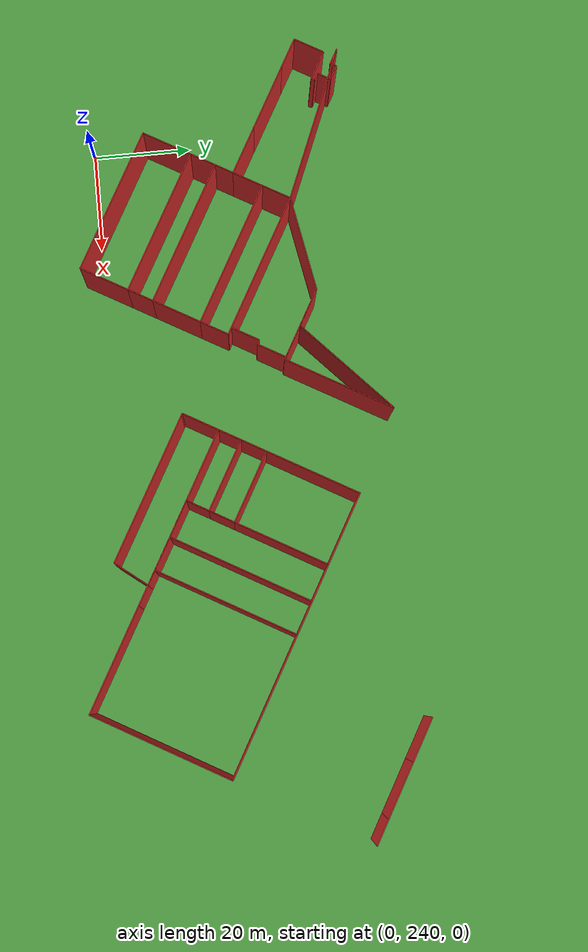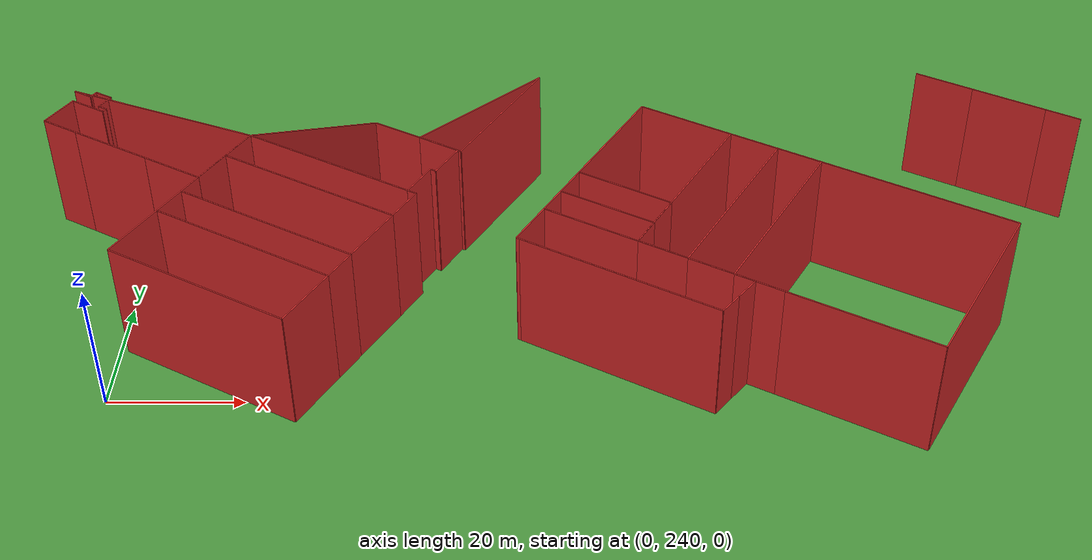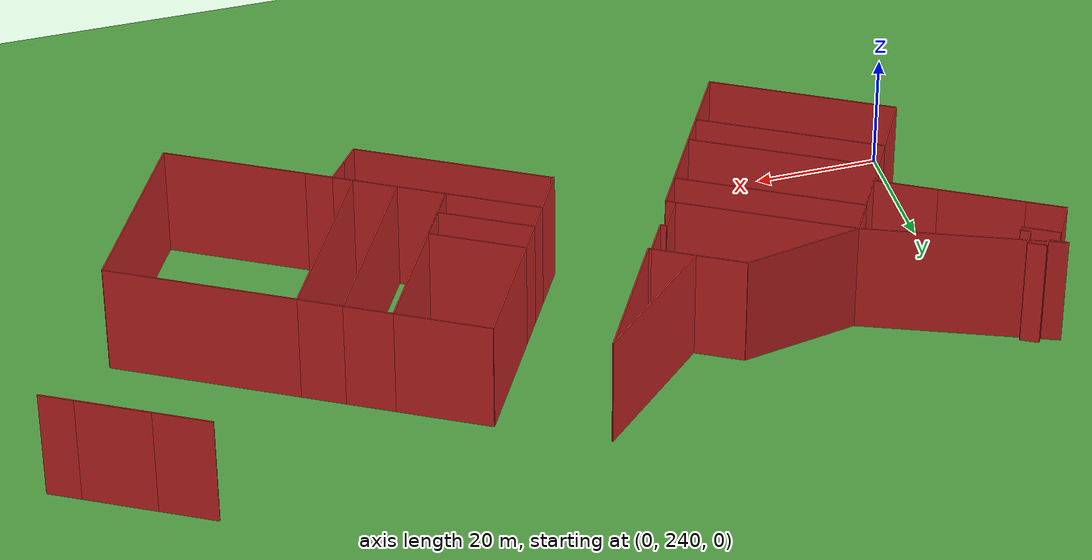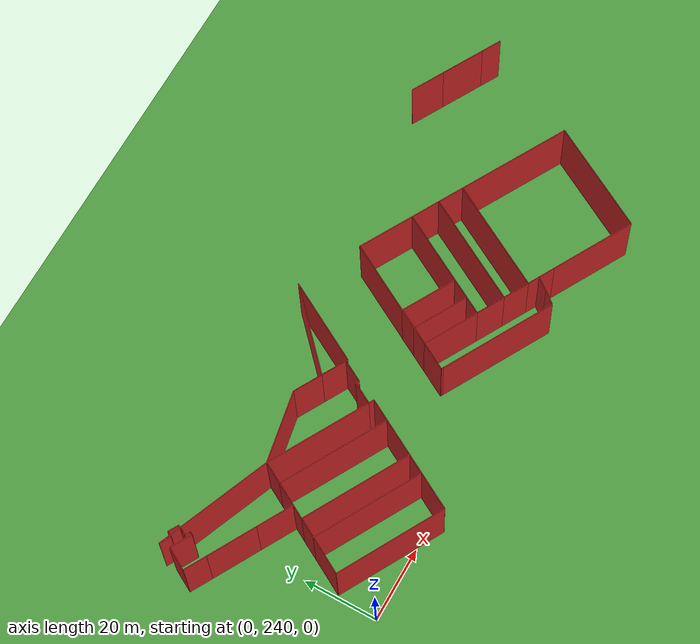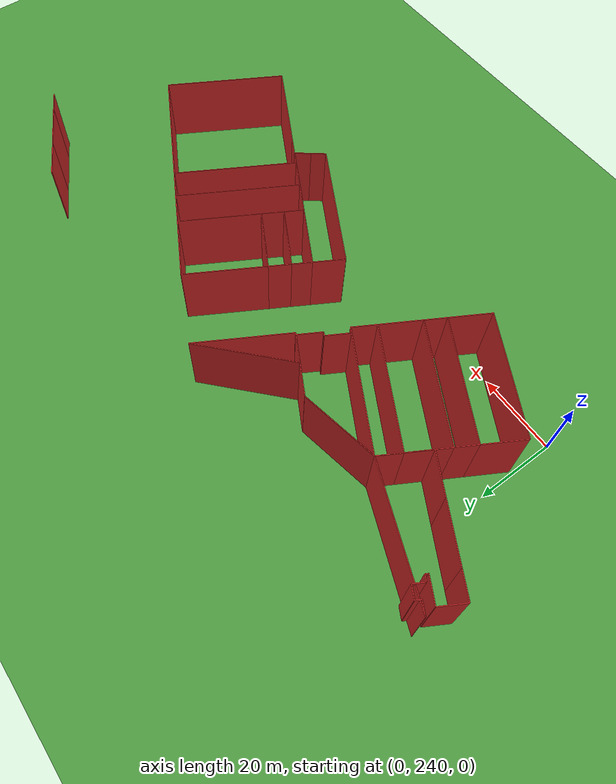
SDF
<sdf version="1.4">
 <world name="default">
  <model name="ground">
   <static>true</static>
   <link name="link">
    <collision name="collision">
     <geometry><plane><size>10000 10000</size><normal>0 0 1</normal></plane></geometry>
     <surface><friction><ode><mu>100</mu><mu2>50</mu2></ode></friction></surface>
    </collision>
    <visual name="visual">
     <pose>0 0 -1 0 0 0</pose>
     <geometry><plane><normal>0 0 1</normal><size>10000 10000</size></plane></geometry>
     <material>
      <script><uri>file://media/materials/scripts/gazebo.material</uri><name>Gazebo/Grass</name></script>
     </material>
    </visual>
   </link>
  </model>
  <include><uri>model://sun</uri></include>
  <model name="office_building_266151939">
   <static>true</static>
   <pose>126.084285854 295.774875327 0.0 0 0 0</pose>
   <link name="office_building_266151939_0">
    <collision name="office_building_266151939_0">
     <geometry><box><size>9.4626025902 0.2 20.0</size></box></geometry>
    </collision>
    <visual name="office_building_266151939_0">
     <geometry><box><size>9.4626025902 0.2 20.0</size></box></geometry>
     <material>
      <script><uri>file://media/materials/scripts/gazebo.material</uri><name>Gazebo/Red</name></script>
     </material>
    </visual>
    <pose>0.0 0.0 9.0 0 0 -0.504473158442</pose>
   </link>
  </model>
  <model name="office_building_266151931">
   <static>true</static>
   <pose>133.713943842 291.561953469 0.0 0 0 0</pose>
   <link name="office_building_266151931_0">
    <collision name="office_building_266151931_0">
     <geometry><box><size>11.9526738172 0.2 20.0</size></box></geometry>
    </collision>
    <visual name="office_building_266151931_0">
     <geometry><box><size>11.9526738172 0.2 20.0</size></box></geometry>
     <material>
      <script><uri>file://media/materials/scripts/gazebo.material</uri><name>Gazebo/Red</name></script>
     </material>
    </visual>
    <pose>1.74386923866 -0.963032453081 9.0 0 0 2.63703213266</pose>
   </link>
   <link name="office_building_266151931_1">
    <collision name="office_building_266151931_1">
     <geometry><box><size>11.9526738172 0.2 20.0</size></box></geometry>
    </collision>
    <visual name="office_building_266151931_1">
     <geometry><box><size>11.9526738172 0.2 20.0</size></box></geometry>
     <material>
      <script><uri>file://media/materials/scripts/gazebo.material</uri><name>Gazebo/Red</name></script>
     </material>
    </visual>
    <pose>1.74386923866 -0.963032453081 9.0 0 0 -0.504560520929</pose>
   </link>
  </model>
  <model name="office_building_266151932">
   <static>true</static>
   <pose>143.141216556 286.357930909 0.0 0 0 0</pose>
   <link name="office_building_266151932_0">
    <collision name="office_building_266151932_0">
     <geometry><box><size>5.59961300474 0.2 20.0</size></box></geometry>
    </collision>
    <visual name="office_building_266151932_0">
     <geometry><box><size>5.59961300474 0.2 20.0</size></box></geometry>
     <material>
      <script><uri>file://media/materials/scripts/gazebo.material</uri><name>Gazebo/Red</name></script>
     </material>
    </visual>
    <pose>0.0 0.0 9.0 0 0 -0.503908850876</pose>
   </link>
  </model>
  <model name="1600 Broadway"><static>true</static><pose>121.942366344 298.061732278 0.0 0 0 0</pose></model>
  <model name="office_building_266170807">
   <static>true</static>
   <pose>13.6077820185 248.895185256 0.0 0 0 0</pose>
   <link name="office_building_266170807_0">
    <collision name="office_building_266170807_0">
     <geometry><box><size>10.5221205274 0.2 20.0</size></box></geometry>
    </collision>
    <visual name="office_building_266170807_0">
     <geometry><box><size>10.5221205274 0.2 20.0</size></box></geometry>
     <material>
      <script><uri>file://media/materials/scripts/gazebo.material</uri><name>Gazebo/Red</name></script>
     </material>
    </visual>
    <pose>-10.1285164397 6.80155858499 9.0 0 0 -2.0796798618</pose>
   </link>
   <link name="office_building_266170807_1">
    <collision name="office_building_266170807_1">
     <geometry><box><size>30.3925068217 0.2 20.0</size></box></geometry>
    </collision>
    <visual name="office_building_266170807_1">
     <geometry><box><size>30.3925068217 0.2 20.0</size></box></geometry>
     <material>
      <script><uri>file://media/materials/scripts/gazebo.material</uri><name>Gazebo/Red</name></script>
     </material>
    </visual>
    <pose>5.73334716327 4.04263727323 9.0 0 0 2.63649588823</pose>
   </link>
   <link name="office_building_266170807_2">
    <collision name="office_building_266170807_2">
     <geometry><box><size>10.5166790038 0.2 20.0</size></box></geometry>
    </collision>
    <visual name="office_building_266170807_2">
     <geometry><box><size>10.5166790038 0.2 20.0</size></box></geometry>
     <material>
      <script><uri>file://media/materials/scripts/gazebo.material</uri><name>Gazebo/Red</name></script>
     </material>
    </visual>
    <pose>16.4743756585 -7.90512485863 9.0 0 0 1.06283661305</pose>
   </link>
   <link name="office_building_266170807_3">
    <collision name="office_building_266170807_3">
     <geometry><box><size>30.4022433863 0.2 20.0</size></box></geometry>
    </collision>
    <visual name="office_building_266170807_3">
     <geometry><box><size>30.4022433863 0.2 20.0</size></box></geometry>
     <material>
      <script><uri>file://media/materials/scripts/gazebo.material</uri><name>Gazebo/Red</name></script>
     </material>
    </visual>
    <pose>0.612512055553 -5.14620354688 9.0 0 0 -0.504918844877</pose>
   </link>
  </model>
  <model name="office_building_266170806">
   <static>true</static>
   <pose>76.6917932526 274.438464644 0.0 0 0 0</pose>
   <link name="office_building_266170806_0">
    <collision name="office_building_266170806_0">
     <geometry><box><size>20.2768953242 0.2 20.0</size></box></geometry>
    </collision>
    <visual name="office_building_266170806_0">
     <geometry><box><size>20.2768953242 0.2 20.0</size></box></geometry>
     <material>
      <script><uri>file://media/materials/scripts/gazebo.material</uri><name>Gazebo/Red</name></script>
     </material>
    </visual>
    <pose>-4.40425280131 4.7588715328 9.0 0 0 -2.08007196948</pose>
   </link>
   <link name="office_building_266170806_1">
    <collision name="office_building_266170806_1">
     <geometry><box><size>15.4089847912 0.2 20.0</size></box></geometry>
    </collision>
    <visual name="office_building_266170806_1">
     <geometry><box><size>15.4089847912 0.2 20.0</size></box></geometry>
     <material>
      <script><uri>file://media/materials/scripts/gazebo.material</uri><name>Gazebo/Red</name></script>
     </material>
    </visual>
    <pose>7.27696492504 9.8750982638 9.0 0 0 2.63538505878</pose>
   </link>
   <link name="office_building_266170806_2">
    <collision name="office_building_266170806_2">
     <geometry><box><size>20.2714485598 0.2 20.0</size></box></geometry>
    </collision>
    <visual name="office_building_266170806_2">
     <geometry><box><size>20.2714485598 0.2 20.0</size></box></geometry>
     <material>
      <script><uri>file://media/materials/scripts/gazebo.material</uri><name>Gazebo/Red</name></script>
     </material>
    </visual>
    <pose>9.07785363053 -2.71237865107 9.0 0 0 1.06199984845</pose>
   </link>
   <link name="office_building_266170806_3">
    <collision name="office_building_266170806_3">
     <geometry><box><size>15.4187157709 0.2 20.0</size></box></geometry>
    </collision>
    <visual name="office_building_266170806_3">
     <geometry><box><size>15.4187157709 0.2 20.0</size></box></geometry>
     <material>
      <script><uri>file://media/materials/scripts/gazebo.material</uri><name>Gazebo/Red</name></script>
     </material>
    </visual>
    <pose>-2.60336409582 -7.82860538207 9.0 0 0 -0.505856121631</pose>
   </link>
  </model>
  <model name="office_building_266170625">
   <static>true</static>
   <pose>71.1294554776 264.471492953 0.0 0 0 0</pose>
   <link name="office_building_266170625_0">
    <collision name="office_building_266170625_0">
     <geometry><box><size>5.50546986581 0.2 20.0</size></box></geometry>
    </collision>
    <visual name="office_building_266170625_0">
     <geometry><box><size>5.50546986581 0.2 20.0</size></box></geometry>
     <material>
      <script><uri>file://media/materials/scripts/gazebo.material</uri><name>Gazebo/Red</name></script>
     </material>
    </visual>
    <pose>-5.12484991719 3.46940965767 9.0 0 0 -2.07920010545</pose>
   </link>
   <link name="office_building_266170625_1">
    <collision name="office_building_266170625_1">
     <geometry><box><size>15.4187157709 0.2 20.0</size></box></geometry>
    </collision>
    <visual name="office_building_266170625_1">
     <geometry><box><size>15.4187157709 0.2 20.0</size></box></geometry>
     <material>
      <script><uri>file://media/materials/scripts/gazebo.material</uri><name>Gazebo/Red</name></script>
     </material>
    </visual>
    <pose>2.95897367912 2.1383663095 9.0 0 0 2.63573653196</pose>
   </link>
   <link name="office_building_266170625_2">
    <collision name="office_building_266170625_2">
     <geometry><box><size>5.51088320307 0.2 20.0</size></box></geometry>
    </collision>
    <visual name="office_building_266170625_2">
     <geometry><box><size>5.51088320307 0.2 20.0</size></box></geometry>
     <material>
      <script><uri>file://media/materials/scripts/gazebo.material</uri><name>Gazebo/Red</name></script>
     </material>
    </visual>
    <pose>8.35726789263 -4.00182635128 9.0 0 0 1.06063021183</pose>
   </link>
   <link name="office_building_266170625_3">
    <collision name="office_building_266170625_3">
     <geometry><box><size>15.4089909476 0.2 20.0</size></box></geometry>
    </collision>
    <visual name="office_building_266170625_3">
     <geometry><box><size>15.4089909476 0.2 20.0</size></box></geometry>
     <material>
      <script><uri>file://media/materials/scripts/gazebo.material</uri><name>Gazebo/Red</name></script>
     </material>
    </visual>
    <pose>0.27344429632 -2.67078300311 9.0 0 0 -0.506205269672</pose>
   </link>
  </model>
  <model name="office_building_266170623">
   <static>true</static>
   <pose>28.3448003992 269.604328676 0.0 0 0 0</pose>
   <link name="office_building_266170623_0">
    <collision name="office_building_266170623_0">
     <geometry><box><size>6.12986993028 0.2 20.0</size></box></geometry>
    </collision>
    <visual name="office_building_266170623_0">
     <geometry><box><size>6.12986993028 0.2 20.0</size></box></geometry>
     <material>
      <script><uri>file://media/materials/scripts/gazebo.material</uri><name>Gazebo/Red</name></script>
     </material>
    </visual>
    <pose>-13.0836715745 7.23684968705 9.0 0 0 -2.07851016107</pose>
   </link>
   <link name="office_building_266170623_1">
    <collision name="office_building_266170623_1">
     <geometry><box><size>28.9213535343 0.2 20.0</size></box></geometry>
    </collision>
    <visual name="office_building_266170623_1">
     <geometry><box><size>28.9213535343 0.2 20.0</size></box></geometry>
     <material>
      <script><uri>file://media/materials/scripts/gazebo.material</uri><name>Gazebo/Red</name></script>
     </material>
    </visual>
    <pose>1.06016535002 2.91556660265 9.0 0 0 2.63632248697</pose>
   </link>
   <link name="office_building_266170623_2">
    <collision name="office_building_266170623_2">
     <geometry><box><size>1.47522072682 0.2 20.0</size></box></geometry>
    </collision>
    <visual name="office_building_266170623_2">
     <geometry><box><size>1.47522072682 0.2 20.0</size></box></geometry>
     <material>
      <script><uri>file://media/materials/scripts/gazebo.material</uri><name>Gazebo/Red</name></script>
     </material>
    </visual>
    <pose>14.3588076758 -4.44201595656 9.0 0 0 2.63485792414</pose>
   </link>
   <link name="office_building_266170623_3">
    <collision name="office_building_266170623_3">
     <geometry><box><size>6.12249420829 0.2 20.0</size></box></geometry>
    </collision>
    <visual name="office_building_266170623_3">
     <geometry><box><size>6.12249420829 0.2 20.0</size></box></geometry>
     <material>
      <script><uri>file://media/materials/scripts/gazebo.material</uri><name>Gazebo/Red</name></script>
     </material>
    </visual>
    <pose>13.5136185564 -7.47409749262 9.0 0 0 1.06241417256</pose>
   </link>
   <link name="office_building_266170623_4">
    <collision name="office_building_266170623_4">
     <geometry><box><size>30.392499383 0.2 20.0</size></box></geometry>
    </collision>
    <visual name="office_building_266170623_4">
     <geometry><box><size>30.392499383 0.2 20.0</size></box></geometry>
     <material>
      <script><uri>file://media/materials/scripts/gazebo.material</uri><name>Gazebo/Red</name></script>
     </material>
    </visual>
    <pose>-1.2751361013 -2.79483373049 9.0 0 0 -0.505098199401</pose>
   </link>
  </model>
  <model name="office_building_266170622">
   <static>true</static>
   <pose>68.6162904021 259.970598528 0.0 0 0 0</pose>
   <link name="office_building_266170622_0">
    <collision name="office_building_266170622_0">
     <geometry><box><size>4.92136446712 0.2 20.0</size></box></geometry>
    </collision>
    <visual name="office_building_266170622_0">
     <geometry><box><size>4.92136446712 0.2 20.0</size></box></geometry>
     <material>
      <script><uri>file://media/materials/scripts/gazebo.material</uri><name>Gazebo/Red</name></script>
     </material>
    </visual>
    <pose>-5.15265261642 3.41803139171 9.0 0 0 -2.08067184619</pose>
   </link>
   <link name="office_building_266170622_1">
    <collision name="office_building_266170622_1">
     <geometry><box><size>15.4089909476 0.2 20.0</size></box></geometry>
    </collision>
    <visual name="office_building_266170622_1">
     <geometry><box><size>15.4089909476 0.2 20.0</size></box></geometry>
     <material>
      <script><uri>file://media/materials/scripts/gazebo.material</uri><name>Gazebo/Red</name></script>
     </material>
    </visual>
    <pose>2.78660937179 1.83011142134 9.0 0 0 2.63538738392</pose>
   </link>
   <link name="office_building_266170622_2">
    <collision name="office_building_266170622_2">
     <geometry><box><size>4.91594047166 0.2 20.0</size></box></geometry>
    </collision>
    <visual name="office_building_266170622_2">
     <geometry><box><size>4.91594047166 0.2 20.0</size></box></geometry>
     <material>
      <script><uri>file://media/materials/scripts/gazebo.material</uri><name>Gazebo/Red</name></script>
     </material>
    </visual>
    <pose>8.32946979512 -4.05319887758 9.0 0 0 1.06289530161</pose>
   </link>
   <link name="office_building_266170622_3">
    <collision name="office_building_266170622_3">
     <geometry><box><size>15.4187182593 0.2 20.0</size></box></geometry>
    </collision>
    <visual name="office_building_266170622_3">
     <geometry><box><size>15.4187182593 0.2 20.0</size></box></geometry>
     <material>
      <script><uri>file://media/materials/scripts/gazebo.material</uri><name>Gazebo/Red</name></script>
     </material>
    </visual>
    <pose>0.390207806921 -2.46527890721 9.0 0 0 -0.505855181135</pose>
   </link>
  </model>
  <model name="office_building_266170811">
   <static>true</static>
   <pose>48.9667041041 281.226361094 0.0 0 0 0</pose>
   <link name="office_building_266170811_0">
    <collision name="office_building_266170811_0">
     <geometry><box><size>24.9051964942 0.2 20.0</size></box></geometry>
    </collision>
    <visual name="office_building_266170811_0">
     <geometry><box><size>24.9051964942 0.2 20.0</size></box></geometry>
     <material>
      <script><uri>file://media/materials/scripts/gazebo.material</uri><name>Gazebo/Red</name></script>
     </material>
    </visual>
    <pose>2.9057758436 6.5332331912 9.0 0 0 -2.38262246103</pose>
   </link>
   <link name="office_building_266170811_1">
    <collision name="office_building_266170811_1">
     <geometry><box><size>23.7448132106 0.2 20.0</size></box></geometry>
    </collision>
    <visual name="office_building_266170811_1">
     <geometry><box><size>23.7448132106 0.2 20.0</size></box></geometry>
     <material>
      <script><uri>file://media/materials/scripts/gazebo.material</uri><name>Gazebo/Red</name></script>
     </material>
    </visual>
    <pose>6.16371955126 4.73069024999 9.0 0 0 1.06261568981</pose>
   </link>
   <link name="office_building_266170811_2">
    <collision name="office_building_266170811_2">
     <geometry><box><size>0.52123803109 0.2 20.0</size></box></geometry>
    </collision>
    <visual name="office_building_266170811_2">
     <geometry><box><size>0.52123803109 0.2 20.0</size></box></geometry>
     <material>
      <script><uri>file://media/materials/scripts/gazebo.material</uri><name>Gazebo/Red</name></script>
     </material>
    </visual>
    <pose>0.15879694709 -5.51506863872 9.0 0 0 -0.506126806177</pose>
   </link>
   <link name="office_building_266170811_3">
    <collision name="office_building_266170811_3">
     <geometry><box><size>6.92546832234 0.2 20.0</size></box></geometry>
    </collision>
    <visual name="office_building_266170811_3">
     <geometry><box><size>6.92546832234 0.2 20.0</size></box></geometry>
     <material>
      <script><uri>file://media/materials/scripts/gazebo.material</uri><name>Gazebo/Red</name></script>
     </material>
    </visual>
    <pose>-3.09914676057 -3.71252569751 9.0 0 0 -0.505297019118</pose>
   </link>
  </model>
  <model name="office_building_266170821">
   <static>true</static>
   <pose>102.222527915 249.135234966 0.0 0 0 0</pose>
   <link name="office_building_266170821_0">
    <collision name="office_building_266170821_0">
     <geometry><box><size>30.7036423945 0.2 20.0</size></box></geometry>
    </collision>
    <visual name="office_building_266170821_0">
     <geometry><box><size>30.7036423945 0.2 20.0</size></box></geometry>
     <material>
      <script><uri>file://media/materials/scripts/gazebo.material</uri><name>Gazebo/Red</name></script>
     </material>
    </visual>
    <pose>-5.84530359111 10.7610953779 9.0 0 0 -2.0800113259</pose>
   </link>
   <link name="office_building_266170821_1">
    <collision name="office_building_266170821_1">
     <geometry><box><size>30.8000462031 0.2 20.0</size></box></geometry>
    </collision>
    <visual name="office_building_266170821_1">
     <geometry><box><size>30.8000462031 0.2 20.0</size></box></geometry>
     <material>
      <script><uri>file://media/materials/scripts/gazebo.material</uri><name>Gazebo/Red</name></script>
     </material>
    </visual>
    <pose>15.1095832636 16.7024209197 9.0 0 0 2.63569277198</pose>
   </link>
   <link name="office_building_266170821_2">
    <collision name="office_building_266170821_2">
     <geometry><box><size>30.7035570677 0.2 20.0</size></box></geometry>
    </collision>
    <visual name="office_building_266170821_2">
     <geometry><box><size>30.7035570677 0.2 20.0</size></box></geometry>
     <material>
      <script><uri>file://media/materials/scripts/gazebo.material</uri><name>Gazebo/Red</name></script>
     </material>
    </visual>
    <pose>21.0967174137 -4.1644130318 9.0 0 0 1.06158179539</pose>
   </link>
   <link name="office_building_266170821_3">
    <collision name="office_building_266170821_3">
     <geometry><box><size>23.1584896 0.2 20.0</size></box></geometry>
    </collision>
    <visual name="office_building_266170821_3">
     <geometry><box><size>23.1584896 0.2 20.0</size></box></geometry>
     <material>
      <script><uri>file://media/materials/scripts/gazebo.material</uri><name>Gazebo/Red</name></script>
     </material>
    </visual>
    <pose>3.48317677524 -11.9587934339 9.0 0 0 -0.505745939004</pose>
   </link>
   <link name="office_building_266170821_4">
    <collision name="office_building_266170821_4">
     <geometry><box><size>4.43538063624 0.2 20.0</size></box></geometry>
    </collision>
    <visual name="office_building_266170821_4">
     <geometry><box><size>4.43538063624 0.2 20.0</size></box></geometry>
     <material>
      <script><uri>file://media/materials/scripts/gazebo.material</uri><name>Gazebo/Red</name></script>
     </material>
    </visual>
    <pose>-8.58681708411 -5.27518172416 9.0 0 0 -0.505512299688</pose>
   </link>
   <link name="office_building_266170821_5">
    <collision name="office_building_266170821_5">
     <geometry><box><size>3.2061954322 0.2 20.0</size></box></geometry>
    </collision>
    <visual name="office_building_266170821_5">
     <geometry><box><size>3.2061954322 0.2 20.0</size></box></geometry>
     <material>
      <script><uri>file://media/materials/scripts/gazebo.material</uri><name>Gazebo/Red</name></script>
     </material>
    </visual>
    <pose>-11.9281633004 -3.42212686385 9.0 0 0 -0.507521390662</pose>
   </link>
  </model>
  <model name="office_building_266170742">
   <static>true</static>
   <pose>91.1310256836 259.292623958 0.0 0 0 0</pose>
   <link name="office_building_266170742_0">
    <collision name="office_building_266170742_0">
     <geometry><box><size>30.7036621856 0.2 20.0</size></box></geometry>
    </collision>
    <visual name="office_building_266170742_0">
     <geometry><box><size>30.7036621856 0.2 20.0</size></box></geometry>
     <material>
      <script><uri>file://media/materials/scripts/gazebo.material</uri><name>Gazebo/Red</name></script>
     </material>
    </visual>
    <pose>-1.00283370573 4.06556389288 9.0 0 0 -2.08001143436</pose>
   </link>
   <link name="office_building_266170742_1">
    <collision name="office_building_266170742_1">
     <geometry><box><size>7.14386718833 0.2 20.0</size></box></geometry>
    </collision>
    <visual name="office_building_266170742_1">
     <geometry><box><size>7.14386718833 0.2 20.0</size></box></geometry>
     <material>
      <script><uri>file://media/materials/scripts/gazebo.material</uri><name>Gazebo/Red</name></script>
     </material>
    </visual>
    <pose>9.60557549206 15.7387356754 9.0 0 0 2.63569525873</pose>
   </link>
   <link name="office_building_266170742_2">
    <collision name="office_building_266170742_2">
     <geometry><box><size>30.7036423945 0.2 20.0</size></box></geometry>
    </collision>
    <visual name="office_building_266170742_2">
     <geometry><box><size>30.7036423945 0.2 20.0</size></box></geometry>
     <material>
      <script><uri>file://media/materials/scripts/gazebo.material</uri><name>Gazebo/Red</name></script>
     </material>
    </visual>
    <pose>5.24619864039 0.603706385817 9.0 0 0 1.06158132769</pose>
   </link>
   <link name="office_building_266170742_3">
    <collision name="office_building_266170742_3">
     <geometry><box><size>7.14387058394 0.2 20.0</size></box></geometry>
    </collision>
    <visual name="office_building_266170742_3">
     <geometry><box><size>7.14387058394 0.2 20.0</size></box></geometry>
     <material>
      <script><uri>file://media/materials/scripts/gazebo.material</uri><name>Gazebo/Red</name></script>
     </material>
    </visual>
    <pose>-5.3622105574 -11.0694653967 9.0 0 0 -0.505894626068</pose>
   </link>
  </model>
  <model name="office_building_266170740">
   <static>true</static>
   <pose>38.1081669585 281.801197507 0.0 0 0 0</pose>
   <link name="office_building_266170740_0">
    <collision name="office_building_266170740_0">
     <geometry><box><size>8.10351728179 0.2 20.0</size></box></geometry>
    </collision>
    <visual name="office_building_266170740_0">
     <geometry><box><size>8.10351728179 0.2 20.0</size></box></geometry>
     <material>
      <script><uri>file://media/materials/scripts/gazebo.material</uri><name>Gazebo/Red</name></script>
     </material>
    </visual>
    <pose>1.18234789105 -0.652791379371 9.0 0 0 2.63712749869</pose>
   </link>
   <link name="office_building_266170740_1">
    <collision name="office_building_266170740_1">
     <geometry><box><size>8.10351728179 0.2 20.0</size></box></geometry>
    </collision>
    <visual name="office_building_266170740_1">
     <geometry><box><size>8.10351728179 0.2 20.0</size></box></geometry>
     <material>
      <script><uri>file://media/materials/scripts/gazebo.material</uri><name>Gazebo/Red</name></script>
     </material>
    </visual>
    <pose>1.18234789105 -0.652791379371 9.0 0 0 -0.504465154895</pose>
   </link>
  </model>
  <model name="office_building_266170741">
   <static>true</static>
   <pose>83.0625054986 262.253293247 0.0 0 0 0</pose>
   <link name="office_building_266170741_0">
    <collision name="office_building_266170741_0">
     <geometry><box><size>4.91594047166 0.2 20.0</size></box></geometry>
    </collision>
    <visual name="office_building_266170741_0">
     <geometry><box><size>4.91594047166 0.2 20.0</size></box></geometry>
     <material>
      <script><uri>file://media/materials/scripts/gazebo.material</uri><name>Gazebo/Red</name></script>
     </material>
    </visual>
    <pose>-6.11674530129 -6.33589359677 9.0 0 0 -2.07869735198</pose>
   </link>
   <link name="office_building_266170741_1">
    <collision name="office_building_266170741_1">
     <geometry><box><size>5.51088320307 0.2 20.0</size></box></geometry>
    </collision>
    <visual name="office_building_266170741_1">
     <geometry><box><size>5.51088320307 0.2 20.0</size></box></geometry>
     <material>
      <script><uri>file://media/materials/scripts/gazebo.material</uri><name>Gazebo/Red</name></script>
     </material>
    </visual>
    <pose>-3.57578212831 -1.78362664603 9.0 0 0 -2.08096244176</pose>
   </link>
   <link name="office_building_266170741_2">
    <collision name="office_building_266170741_2">
     <geometry><box><size>20.2714485598 0.2 20.0</size></box></geometry>
    </collision>
    <visual name="office_building_266170741_2">
     <geometry><box><size>20.2714485598 0.2 20.0</size></box></geometry>
     <material>
      <script><uri>file://media/materials/scripts/gazebo.material</uri><name>Gazebo/Red</name></script>
     </material>
    </visual>
    <pose>2.70714138452 9.47279274575 9.0 0 0 -2.07959280514</pose>
   </link>
   <link name="office_building_266170741_3">
    <collision name="office_building_266170741_3">
     <geometry><box><size>7.88916837486 0.2 20.0</size></box></geometry>
    </collision>
    <visual name="office_building_266170741_3">
     <geometry><box><size>7.88916837486 0.2 20.0</size></box></geometry>
     <material>
      <script><uri>file://media/materials/scripts/gazebo.material</uri><name>Gazebo/Red</name></script>
     </material>
    </visual>
    <pose>11.0970520956 16.4168190747 9.0 0 0 2.63676620366</pose>
   </link>
   <link name="office_building_266170741_4">
    <collision name="office_building_266170741_4">
     <geometry><box><size>30.7036621856 0.2 20.0</size></box></geometry>
    </collision>
    <visual name="office_building_266170741_4">
     <geometry><box><size>30.7036621856 0.2 20.0</size></box></geometry>
     <material>
      <script><uri>file://media/materials/scripts/gazebo.material</uri><name>Gazebo/Red</name></script>
     </material>
    </visual>
    <pose>7.06568647935 1.10489460369 9.0 0 0 1.06158121923</pose>
   </link>
   <link name="office_building_266170741_5">
    <collision name="office_building_266170741_5">
     <geometry><box><size>7.87944131728 0.2 20.0</size></box></geometry>
    </collision>
    <visual name="office_building_266170741_5">
     <geometry><box><size>7.87944131728 0.2 20.0</size></box></geometry>
     <material>
      <script><uri>file://media/materials/scripts/gazebo.material</uri><name>Gazebo/Red</name></script>
     </material>
    </visual>
    <pose>-3.8651874047 -10.391398676 9.0 0 0 -0.505506170621</pose>
   </link>
  </model>
  <model name="office_building_266170772">
   <static>true</static>
   <pose>36.7453300609 275.498037097 0.0 0 0 0</pose>
   <link name="office_building_266170772_0">
    <collision name="office_building_266170772_0">
     <geometry><box><size>19.3280470096 0.2 20.0</size></box></geometry>
    </collision>
    <visual name="office_building_266170772_0">
     <geometry><box><size>19.3280470096 0.2 20.0</size></box></geometry>
     <material>
      <script><uri>file://media/materials/scripts/gazebo.material</uri><name>Gazebo/Red</name></script>
     </material>
    </visual>
    <pose>-10.4979738944 5.81510161549 9.0 0 0 -2.95491034471</pose>
   </link>
   <link name="office_building_266170772_1">
    <collision name="office_building_266170772_1">
     <geometry><box><size>8.10351728179 0.2 20.0</size></box></geometry>
    </collision>
    <visual name="office_building_266170772_1">
     <geometry><box><size>8.10351728179 0.2 20.0</size></box></geometry>
     <material>
      <script><uri>file://media/materials/scripts/gazebo.material</uri><name>Gazebo/Red</name></script>
     </material>
    </visual>
    <pose>2.54518478864 5.65036903021 9.0 0 0 2.63712749869</pose>
   </link>
   <link name="office_building_266170772_2">
    <collision name="office_building_266170772_2">
     <geometry><box><size>6.92546832234 0.2 20.0</size></box></geometry>
    </collision>
    <visual name="office_building_266170772_2">
     <geometry><box><size>6.92546832234 0.2 20.0</size></box></geometry>
     <material>
      <script><uri>file://media/materials/scripts/gazebo.material</uri><name>Gazebo/Red</name></script>
     </material>
    </visual>
    <pose>9.1222272826 2.01579829956 9.0 0 0 2.63629563447</pose>
   </link>
   <link name="office_building_266170772_3">
    <collision name="office_building_266170772_3">
     <geometry><box><size>6.21035745299 0.2 20.0</size></box></geometry>
    </collision>
    <visual name="office_building_266170772_3">
     <geometry><box><size>6.21035745299 0.2 20.0</size></box></geometry>
     <material>
      <script><uri>file://media/materials/scripts/gazebo.material</uri><name>Gazebo/Red</name></script>
     </material>
    </visual>
    <pose>10.6398748872 -2.3723954763 9.0 0 0 1.06209708995</pose>
   </link>
   <link name="office_building_266170772_4">
    <collision name="office_building_266170772_4">
     <geometry><box><size>0.944277543526 0.2 20.0</size></box></geometry>
    </collision>
    <visual name="office_building_266170772_4">
     <geometry><box><size>0.944277543526 0.2 20.0</size></box></geometry>
     <material>
      <script><uri>file://media/materials/scripts/gazebo.material</uri><name>Gazebo/Red</name></script>
     </material>
    </visual>
    <pose>8.71611092348 -4.85275809621 9.0 0 0 -0.512786156008</pose>
   </link>
   <link name="office_building_266170772_5">
    <collision name="office_building_266170772_5">
     <geometry><box><size>6.13526544016 0.2 20.0</size></box></geometry>
    </collision>
    <visual name="office_building_266170772_5">
     <geometry><box><size>6.13526544016 0.2 20.0</size></box></geometry>
     <material>
      <script><uri>file://media/materials/scripts/gazebo.material</uri><name>Gazebo/Red</name></script>
     </material>
    </visual>
    <pose>6.80902922843 -7.29943361656 9.0 0 0 1.06149823089</pose>
   </link>
   <link name="office_building_266170772_6">
    <collision name="office_building_266170772_6">
     <geometry><box><size>28.9213535343 0.2 20.0</size></box></geometry>
    </collision>
    <visual name="office_building_266170772_6">
     <geometry><box><size>28.9213535343 0.2 20.0</size></box></geometry>
     <material>
      <script><uri>file://media/materials/scripts/gazebo.material</uri><name>Gazebo/Red</name></script>
     </material>
    </visual>
    <pose>-7.34036431168 -2.97814181883 9.0 0 0 -0.505270166619</pose>
   </link>
  </model>
  <model name="office_building_266170616">
   <static>true</static>
   <pose>17.7422623288 256.315321921 0.0 0 0 0</pose>
   <link name="office_building_266170616_0">
    <collision name="office_building_266170616_0">
     <geometry><box><size>5.45248549665 0.2 20.0</size></box></geometry>
    </collision>
    <visual name="office_building_266170616_0">
     <geometry><box><size>5.45248549665 0.2 20.0</size></box></geometry>
     <material>
      <script><uri>file://media/materials/scripts/gazebo.material</uri><name>Gazebo/Red</name></script>
     </material>
    </visual>
    <pose>-10.3764904192 6.35938842668 9.0 0 0 -2.07761111884</pose>
   </link>
   <link name="office_building_266170616_1">
    <collision name="office_building_266170616_1">
     <geometry><box><size>30.402235907 0.2 20.0</size></box></geometry>
    </collision>
    <visual name="office_building_266170616_1">
     <geometry><box><size>30.402235907 0.2 20.0</size></box></geometry>
     <material>
      <script><uri>file://media/materials/scripts/gazebo.material</uri><name>Gazebo/Red</name></script>
     </material>
    </visual>
    <pose>4.25103052304 1.38957541237 9.0 0 0 2.63667236573</pose>
   </link>
   <link name="office_building_266170616_2">
    <collision name="office_building_266170616_2">
     <geometry><box><size>5.45787616751 0.2 20.0</size></box></geometry>
    </collision>
    <visual name="office_building_266170616_2">
     <geometry><box><size>5.45787616751 0.2 20.0</size></box></geometry>
     <material>
      <script><uri>file://media/materials/scripts/gazebo.material</uri><name>Gazebo/Red</name></script>
     </material>
    </visual>
    <pose>16.2263877953 -8.34731240571 9.0 0 0 1.06220073493</pose>
   </link>
   <link name="office_building_266170616_3">
    <collision name="office_building_266170616_3">
     <geometry><box><size>30.3925068217 0.2 20.0</size></box></geometry>
    </collision>
    <visual name="office_building_266170616_3">
     <geometry><box><size>30.3925068217 0.2 20.0</size></box></geometry>
     <material>
      <script><uri>file://media/materials/scripts/gazebo.material</uri><name>Gazebo/Red</name></script>
     </material>
    </visual>
    <pose>1.59886685299 -3.3774993914 9.0 0 0 -0.505096765362</pose>
   </link>
  </model>
  <model name="office_building_266170617">
   <static>true</static>
   <pose>19.5731638577 263.766411542 0.0 0 0 0</pose>
   <link name="office_building_266170617_0">
    <collision name="office_building_266170617_0">
     <geometry><box><size>3.95832977087 0.2 20.0</size></box></geometry>
    </collision>
    <visual name="office_building_266170617_0">
     <geometry><box><size>3.95832977087 0.2 20.0</size></box></geometry>
     <material>
      <script><uri>file://media/materials/scripts/gazebo.material</uri><name>Gazebo/Red</name></script>
     </material>
    </visual>
    <pose>-9.91662943427 3.01843080461 9.0 0 0 -2.08153457475</pose>
   </link>
   <link name="office_building_266170617_1">
    <collision name="office_building_266170617_1">
     <geometry><box><size>6.46856797736 0.2 20.0</size></box></geometry>
    </collision>
    <visual name="office_building_266170617_1">
     <geometry><box><size>6.46856797736 0.2 20.0</size></box></geometry>
     <material>
      <script><uri>file://media/materials/scripts/gazebo.material</uri><name>Gazebo/Red</name></script>
     </material>
    </visual>
    <pose>-7.37565930907 7.57073517943 9.0 0 0 -2.07888715188</pose>
   </link>
   <link name="office_building_266170617_2">
    <collision name="office_building_266170617_2">
     <geometry><box><size>30.392499383 0.2 20.0</size></box></geometry>
    </collision>
    <visual name="office_building_266170617_2">
     <geometry><box><size>30.392499383 0.2 20.0</size></box></geometry>
     <material>
      <script><uri>file://media/materials/scripts/gazebo.material</uri><name>Gazebo/Red</name></script>
     </material>
    </visual>
    <pose>7.49650044017 3.04308340374 9.0 0 0 2.63649445419</pose>
   </link>
   <link name="office_building_266170617_3">
    <collision name="office_building_266170617_3">
     <geometry><box><size>10.4214458836 0.2 20.0</size></box></geometry>
    </collision>
    <visual name="office_building_266170617_3">
     <geometry><box><size>10.4214458836 0.2 20.0</size></box></geometry>
     <material>
      <script><uri>file://media/materials/scripts/gazebo.material</uri><name>Gazebo/Red</name></script>
     </material>
    </visual>
    <pose>18.2597469244 -8.862574454 9.0 0 0 1.06263261853</pose>
   </link>
   <link name="office_building_266170617_4">
    <collision name="office_building_266170617_4">
     <geometry><box><size>30.402235907 0.2 20.0</size></box></geometry>
    </collision>
    <visual name="office_building_266170617_4">
     <geometry><box><size>30.402235907 0.2 20.0</size></box></geometry>
     <material>
      <script><uri>file://media/materials/scripts/gazebo.material</uri><name>Gazebo/Red</name></script>
     </material>
    </visual>
    <pose>2.4201289941 -6.06151420835 9.0 0 0 -0.50492028786</pose>
   </link>
  </model>
  <model name="office_building_266170619">
   <static>true</static>
   <pose>78.1341799914 248.379240423 0.0 0 0 0</pose>
   <link name="office_building_266170619_0">
    <collision name="office_building_266170619_0">
     <geometry><box><size>31.9586753891 0.2 20.0</size></box></geometry>
    </collision>
    <visual name="office_building_266170619_0">
     <geometry><box><size>31.9586753891 0.2 20.0</size></box></geometry>
     <material>
      <script><uri>file://media/materials/scripts/gazebo.material</uri><name>Gazebo/Red</name></script>
     </material>
    </visual>
    <pose>-5.28627319632 -2.00016066006 9.0 0 0 -0.506003412306</pose>
   </link>
   <link name="office_building_266170619_1">
    <collision name="office_building_266170619_1">
     <geometry><box><size>0.507433192264 0.2 20.0</size></box></geometry>
    </collision>
    <visual name="office_building_266170619_1">
     <geometry><box><size>0.507433192264 0.2 20.0</size></box></geometry>
     <material>
      <script><uri>file://media/materials/scripts/gazebo.material</uri><name>Gazebo/Red</name></script>
     </material>
    </visual>
    <pose>-19.4856029758 5.86692441906 9.0 0 0 -0.502228372767</pose>
   </link>
   <link name="office_building_266170619_2">
    <collision name="office_building_266170619_2">
     <geometry><box><size>7.8709317958 0.2 20.0</size></box></geometry>
    </collision>
    <visual name="office_building_266170619_2">
     <geometry><box><size>7.8709317958 0.2 20.0</size></box></geometry>
     <material>
      <script><uri>file://media/materials/scripts/gazebo.material</uri><name>Gazebo/Red</name></script>
     </material>
    </visual>
    <pose>-17.7897562875 9.42537578615 9.0 0 0 -2.07993107351</pose>
   </link>
   <link name="office_building_266170619_3">
    <collision name="office_building_266170619_3">
     <geometry><box><size>15.4187182593 0.2 20.0</size></box></geometry>
    </collision>
    <visual name="office_building_266170619_3">
     <geometry><box><size>15.4187182593 0.2 20.0</size></box></geometry>
     <material>
      <script><uri>file://media/materials/scripts/gazebo.material</uri><name>Gazebo/Red</name></script>
     </material>
    </visual>
    <pose>-9.12768178233 9.12607919757 9.0 0 0 2.63573747245</pose>
   </link>
   <link name="office_building_266170619_4">
    <collision name="office_building_266170619_4">
     <geometry><box><size>7.87944131728 0.2 20.0</size></box></geometry>
    </collision>
    <visual name="office_building_266170619_4">
     <geometry><box><size>7.87944131728 0.2 20.0</size></box></geometry>
     <material>
      <script><uri>file://media/materials/scripts/gazebo.material</uri><name>Gazebo/Red</name></script>
     </material>
    </visual>
    <pose>1.06313810246 3.482654148 9.0 0 0 2.63608648297</pose>
   </link>
   <link name="office_building_266170619_5">
    <collision name="office_building_266170619_5">
     <geometry><box><size>7.14387058394 0.2 20.0</size></box></geometry>
    </collision>
    <visual name="office_building_266170619_5">
     <geometry><box><size>7.14387058394 0.2 20.0</size></box></geometry>
     <material>
      <script><uri>file://media/materials/scripts/gazebo.material</uri><name>Gazebo/Red</name></script>
     </material>
    </visual>
    <pose>7.63463513485 -0.156081861966 9.0 0 0 2.63569802752</pose>
   </link>
   <link name="office_building_266170619_6">
    <collision name="office_building_266170619_6">
     <geometry><box><size>3.2061954322 0.2 20.0</size></box></geometry>
    </collision>
    <visual name="office_building_266170619_6">
     <geometry><box><size>3.2061954322 0.2 20.0</size></box></geometry>
     <material>
      <script><uri>file://media/materials/scripts/gazebo.material</uri><name>Gazebo/Red</name></script>
     </material>
    </visual>
    <pose>12.1601846234 -2.66613232119 9.0 0 0 2.63407126293</pose>
   </link>
   <link name="office_building_266170619_7">
    <collision name="office_building_266170619_7">
     <geometry><box><size>4.16281835848 0.2 20.0</size></box></geometry>
    </collision>
    <visual name="office_building_266170619_7">
     <geometry><box><size>4.16281835848 0.2 20.0</size></box></geometry>
     <material>
      <script><uri>file://media/materials/scripts/gazebo.material</uri><name>Gazebo/Red</name></script>
     </material>
    </visual>
    <pose>12.2879786927 -5.0918100922 9.0 0 0 0.912565435819</pose>
   </link>
   <link name="office_building_266170619_8">
    <collision name="office_building_266170619_8">
     <geometry><box><size>3.80024356136 0.2 20.0</size></box></geometry>
    </collision>
    <visual name="office_building_266170619_8">
     <geometry><box><size>3.80024356136 0.2 20.0</size></box></geometry>
     <material>
      <script><uri>file://media/materials/scripts/gazebo.material</uri><name>Gazebo/Red</name></script>
     </material>
    </visual>
    <pose>9.85270675797 -8.2417369529 9.0 0 0 0.91276730329</pose>
   </link>
  </model>
  <model name="office_building_266170795">
   <static>true</static>
   <pose>-3.25408751622 282.598997184 0.0 0 0 0</pose>
   <link name="office_building_266170795_0">
    <collision name="office_building_266170795_0">
     <geometry><box><size>10.216091106 0.2 20.0</size></box></geometry>
    </collision>
    <visual name="office_building_266170795_0">
     <geometry><box><size>10.216091106 0.2 20.0</size></box></geometry>
     <material>
      <script><uri>file://media/materials/scripts/gazebo.material</uri><name>Gazebo/Red</name></script>
     </material>
    </visual>
    <pose>9.40813469927 -11.6153745407 9.0 0 0 -0.50519648459</pose>
   </link>
   <link name="office_building_266170795_1">
    <collision name="office_building_266170795_1">
     <geometry><box><size>13.7957332768 0.2 20.0</size></box></geometry>
    </collision>
    <visual name="office_building_266170795_1">
     <geometry><box><size>13.7957332768 0.2 20.0</size></box></geometry>
     <material>
      <script><uri>file://media/materials/scripts/gazebo.material</uri><name>Gazebo/Red</name></script>
     </material>
    </visual>
    <pose>-1.09957033781 -5.80761640897 9.0 0 0 -0.504723413117</pose>
   </link>
   <link name="office_building_266170795_2">
    <collision name="office_building_266170795_2">
     <geometry><box><size>6.37663005794 0.2 20.0</size></box></geometry>
    </collision>
    <visual name="office_building_266170795_2">
     <geometry><box><size>6.37663005794 0.2 20.0</size></box></geometry>
     <material>
      <script><uri>file://media/materials/scripts/gazebo.material</uri><name>Gazebo/Red</name></script>
     </material>
    </visual>
    <pose>-9.92826387523 -0.930605975863 9.0 0 0 -0.504609599494</pose>
   </link>
   <link name="office_building_266170795_3">
    <collision name="office_building_266170795_3">
     <geometry><box><size>6.47400240503 0.2 20.0</size></box></geometry>
    </collision>
    <visual name="office_building_266170795_3">
     <geometry><box><size>6.47400240503 0.2 20.0</size></box></geometry>
     <material>
      <script><uri>file://media/materials/scripts/gazebo.material</uri><name>Gazebo/Red</name></script>
     </material>
    </visual>
    <pose>-11.1401204882 3.43655475996 9.0 0 0 -2.08038823328</pose>
   </link>
   <link name="office_building_266170795_4">
    <collision name="office_building_266170795_4">
     <geometry><box><size>6.11114376897 0.2 20.0</size></box></geometry>
    </collision>
    <visual name="office_building_266170795_4">
     <geometry><box><size>6.11114376897 0.2 20.0</size></box></geometry>
     <material>
      <script><uri>file://media/materials/scripts/gazebo.material</uri><name>Gazebo/Red</name></script>
     </material>
    </visual>
    <pose>-6.88686266582 4.78400580406 9.0 0 0 2.63660753261</pose>
   </link>
   <link name="office_building_266170795_5">
    <collision name="office_building_266170795_5">
     <geometry><box><size>0.772623645905 0.2 20.0</size></box></geometry>
    </collision>
    <visual name="office_building_266170795_5">
     <geometry><box><size>0.772623645905 0.2 20.0</size></box></geometry>
     <material>
      <script><uri>file://media/materials/scripts/gazebo.material</uri><name>Gazebo/Red</name></script>
     </material>
    </visual>
    <pose>-4.02363773033 3.64263335349 9.0 0 0 -2.0821486931</pose>
   </link>
   <link name="office_building_266170795_6">
    <collision name="office_building_266170795_6">
     <geometry><box><size>1.51256568112 0.2 20.0</size></box></geometry>
    </collision>
    <visual name="office_building_266170795_6">
     <geometry><box><size>1.51256568112 0.2 20.0</size></box></geometry>
     <material>
      <script><uri>file://media/materials/scripts/gazebo.material</uri><name>Gazebo/Red</name></script>
     </material>
    </visual>
    <pose>-4.49618889817 4.34593778266 9.0 0 0 -0.505775218754</pose>
   </link>
   <link name="office_building_266170795_7">
    <collision name="office_building_266170795_7">
     <geometry><box><size>2.89658277621 0.2 20.0</size></box></geometry>
    </collision>
    <visual name="office_building_266170795_7">
     <geometry><box><size>2.89658277621 0.2 20.0</size></box></geometry>
     <material>
      <script><uri>file://media/materials/scripts/gazebo.material</uri><name>Gazebo/Red</name></script>
     </material>
    </visual>
    <pose>-4.45720696098 5.97991815697 9.0 0 0 -2.07570431995</pose>
   </link>
   <link name="office_building_266170795_8">
    <collision name="office_building_266170795_8">
     <geometry><box><size>2.99751829714 0.2 20.0</size></box></geometry>
    </collision>
    <visual name="office_building_266170795_8">
     <geometry><box><size>2.99751829714 0.2 20.0</size></box></geometry>
     <material>
      <script><uri>file://media/materials/scripts/gazebo.material</uri><name>Gazebo/Red</name></script>
     </material>
    </visual>
    <pose>-5.06870109303 7.97188446776 9.0 0 0 -0.504453732311</pose>
   </link>
   <link name="office_building_266170795_9">
    <collision name="office_building_266170795_9">
     <geometry><box><size>1.40976657957 0.2 20.0</size></box></geometry>
    </collision>
    <visual name="office_building_266170795_9">
     <geometry><box><size>1.40976657957 0.2 20.0</size></box></geometry>
     <material>
      <script><uri>file://media/materials/scripts/gazebo.material</uri><name>Gazebo/Red</name></script>
     </material>
    </visual>
    <pose>-6.72550120445 8.08144311672 9.0 0 0 1.05978745007</pose>
   </link>
   <link name="office_building_266170795_10">
    <collision name="office_building_266170795_10">
     <geometry><box><size>3.22566008754 0.2 20.0</size></box></geometry>
    </collision>
    <visual name="office_building_266170795_10">
     <geometry><box><size>3.22566008754 0.2 20.0</size></box></geometry>
     <material>
      <script><uri>file://media/materials/scripts/gazebo.material</uri><name>Gazebo/Red</name></script>
     </material>
    </visual>
    <pose>-8.4823745683 8.24575293714 9.0 0 0 -0.504182753195</pose>
   </link>
   <link name="office_building_266170795_11">
    <collision name="office_building_266170795_11">
     <geometry><box><size>32.257051607 0.2 20.0</size></box></geometry>
    </collision>
    <visual name="office_building_266170795_11">
     <geometry><box><size>32.257051607 0.2 20.0</size></box></geometry>
     <material>
      <script><uri>file://media/materials/scripts/gazebo.material</uri><name>Gazebo/Red</name></script>
     </material>
    </visual>
    <pose>5.05540459654 2.97269913879 9.0 0 0 2.75692820082</pose>
   </link>
   <link name="office_building_266170795_12">
    <collision name="office_building_266170795_12">
     <geometry><box><size>6.12986993028 0.2 20.0</size></box></geometry>
    </collision>
    <visual name="office_building_266170795_12">
     <geometry><box><size>6.12986993028 0.2 20.0</size></box></geometry>
     <material>
      <script><uri>file://media/materials/scripts/gazebo.material</uri><name>Gazebo/Red</name></script>
     </material>
    </visual>
    <pose>18.5152163409 -5.75781882119 9.0 0 0 1.06308249252</pose>
   </link>
   <link name="office_building_266170795_13">
    <collision name="office_building_266170795_13">
     <geometry><box><size>6.46856797736 0.2 20.0</size></box></geometry>
    </collision>
    <visual name="office_building_266170795_13">
     <geometry><box><size>6.46856797736 0.2 20.0</size></box></geometry>
     <material>
      <script><uri>file://media/materials/scripts/gazebo.material</uri><name>Gazebo/Red</name></script>
     </material>
    </visual>
    <pose>15.4515920649 -11.261850463 9.0 0 0 1.06270550171</pose>
   </link>
  </model>
 </world>
</sdf>
